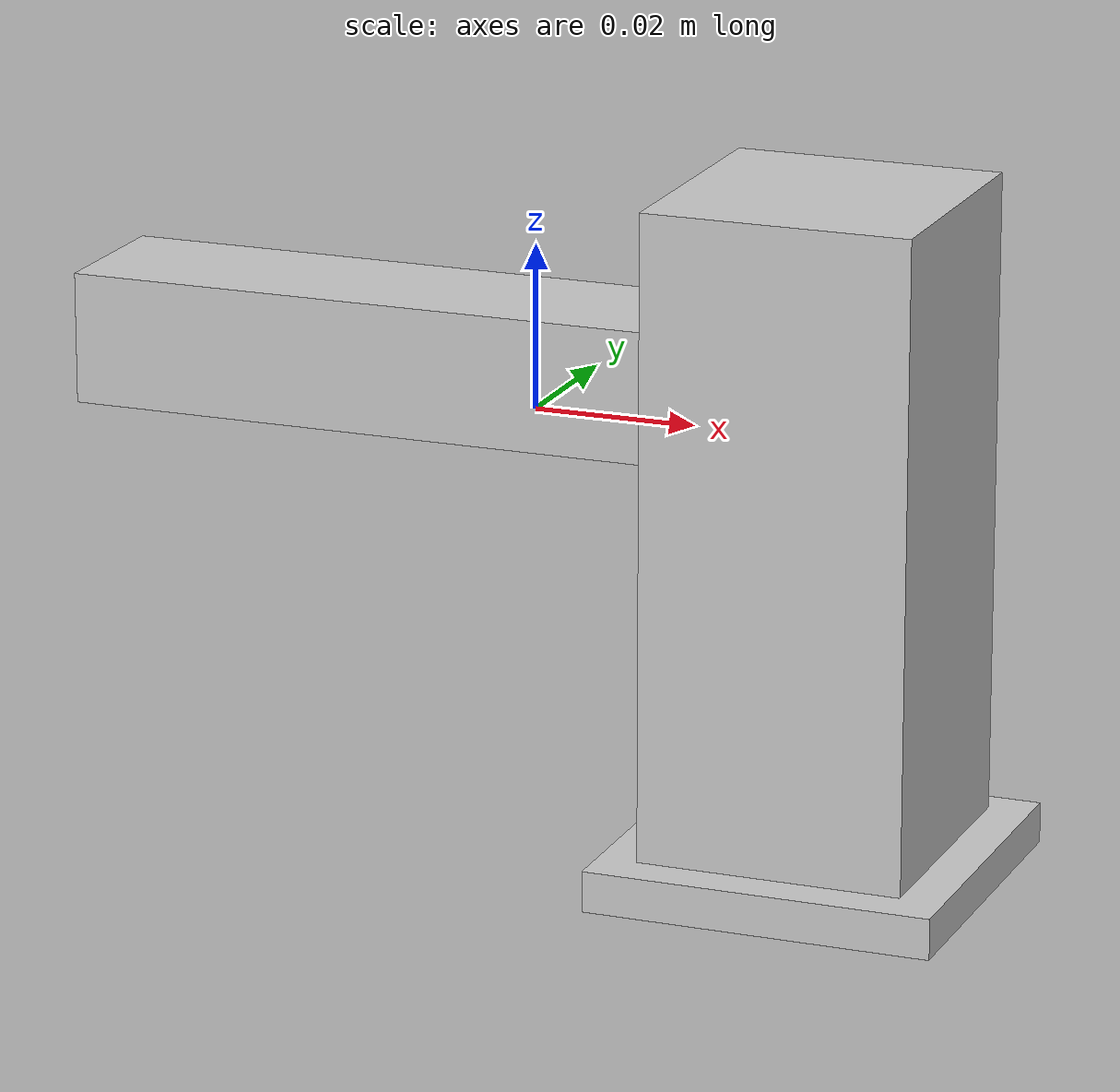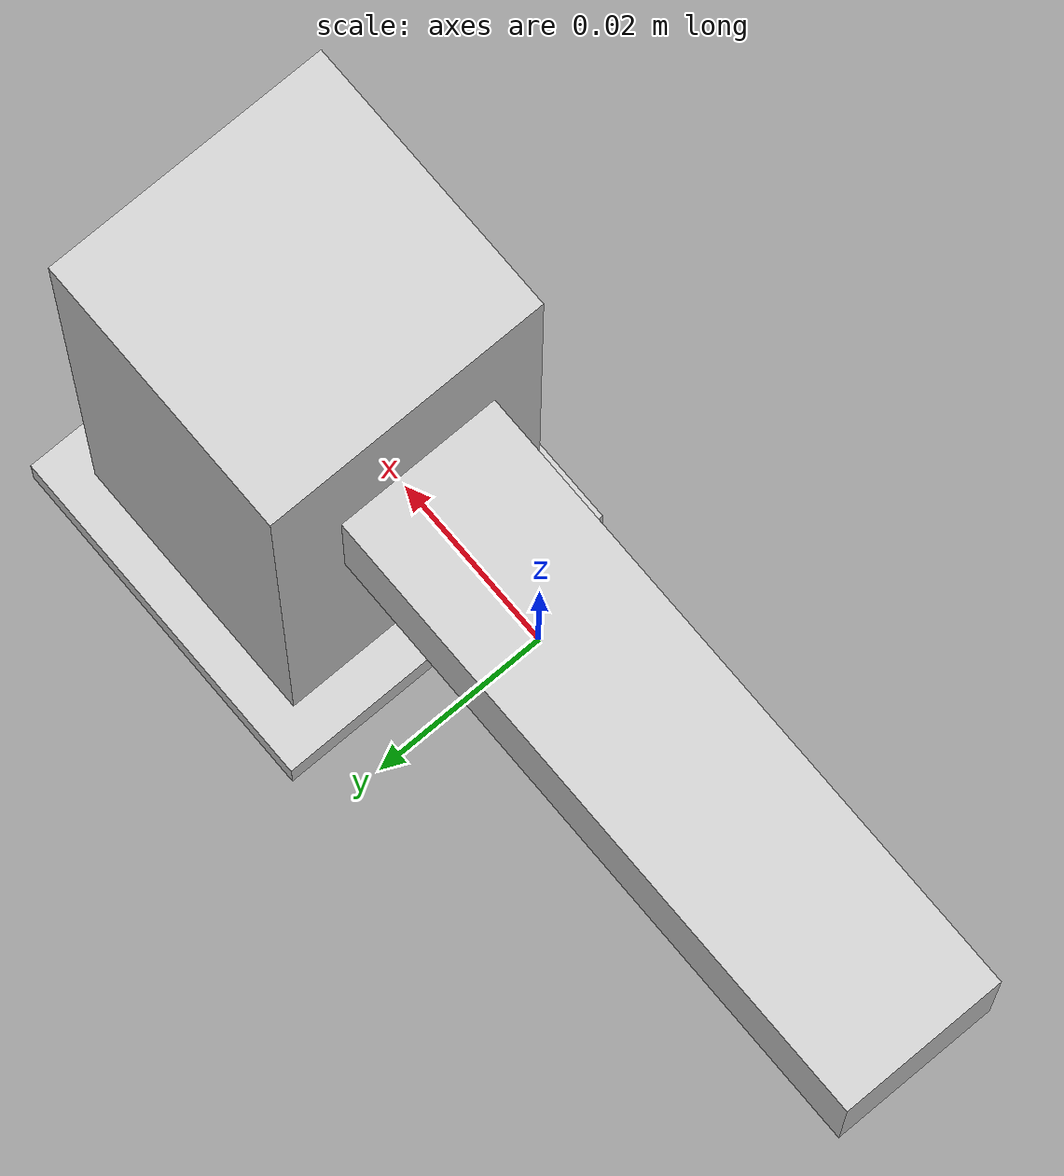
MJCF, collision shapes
<mujoco model="basin_faucet_base">
  <asset>
  <texture file="/home/yifengz/workspace/robosuite-master/robosuite/models/assets/textures/ceramic.png" name="tex-basin_faucet_base" type="2d" />
  <material name="basin_faucet_base" reflectance="0.5" texrepeat="1 1" texture="tex-basin_faucet_base" texuniform="false" />
  <mesh file="visual/basin_faucet_base_vis.msh" name="basin_faucet_base_vis" scale="0.02 0.02 0.02" /></asset>
  <worldbody>
    <body>
      <body name="object">
      <geom solimp="0.998 0.998 0.001" solref="0.001 1" density="100" friction="0.95 0.3 0.1" type="mesh" mesh="basin_faucet_base_vis" conaffinity="0" contype="0" group="1" material="basin_faucet_base" /><geom solimp="0.998 0.998 0.001" solref="0.001 1" density="100" friction="0.95 0.3 0.1" type="box" pos="0.03549 0.00000 -0.00961" quat="0.00000 0.00000 1.00000 0.00000" size="0.01626 0.01660 0.03919" group="0" rgba="0.8 0.8 0.8 0.3" /><geom solimp="0.998 0.998 0.001" solref="0.001 1" density="100" friction="0.95 0.3 0.1" type="box" pos="0.03549 0.00000 -0.05157" quat="0.70711 0.00000 0.70711 0.00000" size="0.00251 0.02117 0.02136" group="0" rgba="0.8 0.8 0.8 0.3" /><geom solimp="0.998 0.998 0.001" solref="0.001 1" density="100" friction="0.95 0.3 0.1" type="box" pos="-0.01850 -0.00035 0.00556" quat="0.70711 0.00000 0.70711 0.00000" size="0.00797 0.00954 0.03684" group="0" rgba="0.8 0.8 0.8 0.3" /></body>
      <site rgba="0 0 0 0" size="0.005" pos="0 0 -0.0240" name="bottom_site" />
      <site rgba="0 0 0 0" size="0.005" pos="0 0 0.04" name="top_site" />
      <site rgba="0 0 0 0" size="0.005" pos="0.025 0.025 0" name="horizontal_radius_site" />
    </body>
  </worldbody>
</mujoco>
